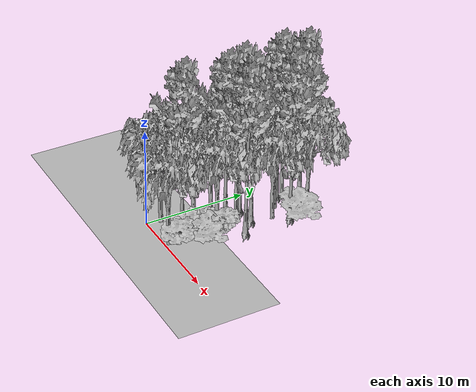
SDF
<sdf version="1.7">
 <world name="default">
  <model name="ground_plane">
   <static>1</static>
   <link name="link">
    <collision name="collision">
     <pose>-50 0 0 0 -0 0</pose>
     <geometry><plane><normal>0 0 1</normal><size>100 100</size></plane></geometry>
     <surface><contact><ode><min_depth>0.01</min_depth><max_vel>0</max_vel></ode></contact></surface>
    </collision>
    <visual name="grass">
     <cast_shadows>0</cast_shadows>
     <geometry>
      <mesh>
       <scale>0.5814285714285714 0.18142857142857144 0.1</scale>
       <uri>file://grass_plane/meshes/grass_plane.dae</uri>
      </mesh>
     </geometry>
    </visual>
   </link>
  </model>
  <model name="Tree 32">
   <static>1</static>
   <pose>3.6359509436147874 1.762278367412243 0 1.57079 -0 0</pose>
   <link name="link">
    <collision name="collision">
     <geometry><mesh><scale>4 2.5 4</scale><uri>model://tree_1/meshes/tree_1.obj</uri></mesh></geometry>
    </collision>
    <visual name="visual">
     <geometry><mesh><scale>4 2.5 4</scale><uri>model://tree_1/meshes/tree_1.obj</uri></mesh></geometry>
    </visual>
   </link>
  </model>
  <model name="Tree 50">
   <static>1</static>
   <pose>2.997747021663905 3.6113305052093736 0 1.57079 -0 0</pose>
   <link name="link">
    <collision name="collision">
     <geometry><mesh><scale>4 2.5 4</scale><uri>model://tree_1/meshes/tree_1.obj</uri></mesh></geometry>
    </collision>
    <visual name="visual">
     <geometry><mesh><scale>4 2.5 4</scale><uri>model://tree_1/meshes/tree_1.obj</uri></mesh></geometry>
    </visual>
   </link>
  </model>
  <model name="Tree 68">
   <static>1</static>
   <pose>5.3373234300077 12.10923159641861 0 1.57079 -0 0</pose>
   <link name="link">
    <collision name="collision">
     <geometry><mesh><scale>3.5 5 3.5</scale><uri>model://tree_9/meshes/tree_9.obj</uri></mesh></geometry>
    </collision>
    <visual name="visual">
     <geometry><mesh><scale>3.5 5 3.5</scale><uri>model://tree_9/meshes/tree_9.obj</uri></mesh></geometry>
    </visual>
   </link>
  </model>
  <model name="Tree 103">
   <static>1</static>
   <pose>5.0837384030493595 14.065991016790193 0 1.57079 -0 0</pose>
   <link name="link">
    <collision name="collision">
     <geometry><mesh><scale>3.5 5 3.5</scale><uri>model://tree_2/meshes/tree_2.obj</uri></mesh></geometry>
    </collision>
    <visual name="visual">
     <geometry><mesh><scale>3.5 5 3.5</scale><uri>model://tree_2/meshes/tree_2.obj</uri></mesh></geometry>
    </visual>
   </link>
  </model>
  <model name="Tree 106">
   <static>1</static>
   <pose>1.678671374052172 12.840617621795072 0 1.57079 -0 0</pose>
   <link name="link">
    <collision name="collision">
     <geometry><mesh><scale>3.5 5 3.5</scale><uri>model://tree_9/meshes/tree_9.obj</uri></mesh></geometry>
    </collision>
    <visual name="visual">
     <geometry><mesh><scale>3.5 5 3.5</scale><uri>model://tree_9/meshes/tree_9.obj</uri></mesh></geometry>
    </visual>
   </link>
  </model>
  <model name="Tree 107">
   <static>1</static>
   <pose>4.29193354149465 3.625306814225997 0 1.57079 -0 0</pose>
   <link name="link">
    <collision name="collision">
     <geometry><mesh><scale>3 2 3</scale><uri>model://tree_3/meshes/tree_3.obj</uri></mesh></geometry>
    </collision>
    <visual name="visual">
     <geometry><mesh><scale>3 2 3</scale><uri>model://tree_3/meshes/tree_3.obj</uri></mesh></geometry>
    </visual>
   </link>
  </model>
  <model name="Tree 124">
   <static>1</static>
   <pose>3.4940394068418854 5.405907248053346 0 1.57079 -0 0</pose>
   <link name="link">
    <collision name="collision">
     <geometry><mesh><scale>3.5 5 3.5</scale><uri>model://tree_2/meshes/tree_2.obj</uri></mesh></geometry>
    </collision>
    <visual name="visual">
     <geometry><mesh><scale>3.5 5 3.5</scale><uri>model://tree_2/meshes/tree_2.obj</uri></mesh></geometry>
    </visual>
   </link>
  </model>
  <model name="Tree 212">
   <static>1</static>
   <pose>4.51891289936804 10.640554352454831 0 1.57079 -0 0</pose>
   <link name="link">
    <collision name="collision">
     <geometry><mesh><scale>3.5 5 3.5</scale><uri>model://tree_2/meshes/tree_2.obj</uri></mesh></geometry>
    </collision>
    <visual name="visual">
     <geometry><mesh><scale>3.5 5 3.5</scale><uri>model://tree_2/meshes/tree_2.obj</uri></mesh></geometry>
    </visual>
   </link>
  </model>
  <model name="Tree 232">
   <static>1</static>
   <pose>1.7301684433556446 3.9252196286578354 0 1.57079 -0 0</pose>
   <link name="link">
    <collision name="collision">
     <geometry><mesh><scale>3.5 5 3.5</scale><uri>model://tree_2/meshes/tree_2.obj</uri></mesh></geometry>
    </collision>
    <visual name="visual">
     <geometry><mesh><scale>3.5 5 3.5</scale><uri>model://tree_2/meshes/tree_2.obj</uri></mesh></geometry>
    </visual>
   </link>
  </model>
  <model name="Tree 236">
   <static>1</static>
   <pose>2.021613179537141 8.617392845584313 0 1.57079 -0 0</pose>
   <link name="link">
    <collision name="collision">
     <geometry><mesh><scale>3.5 5 3.5</scale><uri>model://tree_9/meshes/tree_9.obj</uri></mesh></geometry>
    </collision>
    <visual name="visual">
     <geometry><mesh><scale>3.5 5 3.5</scale><uri>model://tree_9/meshes/tree_9.obj</uri></mesh></geometry>
    </visual>
   </link>
  </model>
  <model name="Tree 275">
   <static>1</static>
   <pose>3.202379959707372 11.657615088617035 0 1.57079 -0 0</pose>
   <link name="link">
    <collision name="collision">
     <geometry><mesh><scale>3.5 5 3.5</scale><uri>model://tree_2/meshes/tree_2.obj</uri></mesh></geometry>
    </collision>
    <visual name="visual">
     <geometry><mesh><scale>3.5 5 3.5</scale><uri>model://tree_2/meshes/tree_2.obj</uri></mesh></geometry>
    </visual>
   </link>
  </model>
  <model name="Tree 295">
   <static>1</static>
   <pose>0.6746716818994827 6.295601057496079 0 1.57079 -0 0</pose>
   <link name="link">
    <collision name="collision">
     <geometry><mesh><scale>3.5 5 3.5</scale><uri>model://tree_2/meshes/tree_2.obj</uri></mesh></geometry>
    </collision>
    <visual name="visual">
     <geometry><mesh><scale>3.5 5 3.5</scale><uri>model://tree_2/meshes/tree_2.obj</uri></mesh></geometry>
    </visual>
   </link>
  </model>
  <model name="Tree 312">
   <static>1</static>
   <pose>2.01400786587584 2.6408006472830614 0 1.57079 -0 0</pose>
   <link name="link">
    <collision name="collision">
     <geometry><mesh><scale>3.5 5 3.5</scale><uri>model://tree_9/meshes/tree_9.obj</uri></mesh></geometry>
    </collision>
    <visual name="visual">
     <geometry><mesh><scale>3.5 5 3.5</scale><uri>model://tree_9/meshes/tree_9.obj</uri></mesh></geometry>
    </visual>
   </link>
  </model>
  <model name="Tree 374">
   <static>1</static>
   <pose>2.469127669580928 6.877933429391064 0 1.57079 -0 0</pose>
   <link name="link">
    <collision name="collision">
     <geometry><mesh><scale>3.5 5 3.5</scale><uri>model://tree_9/meshes/tree_9.obj</uri></mesh></geometry>
    </collision>
    <visual name="visual">
     <geometry><mesh><scale>3.5 5 3.5</scale><uri>model://tree_9/meshes/tree_9.obj</uri></mesh></geometry>
    </visual>
   </link>
  </model>
  <model name="Tree 401">
   <static>1</static>
   <pose>2.26279934137078 13.010061051288336 0 1.57079 -0 0</pose>
   <link name="link">
    <collision name="collision">
     <geometry><mesh><scale>3.5 5 3.5</scale><uri>model://tree_2/meshes/tree_2.obj</uri></mesh></geometry>
    </collision>
    <visual name="visual">
     <geometry><mesh><scale>3.5 5 3.5</scale><uri>model://tree_2/meshes/tree_2.obj</uri></mesh></geometry>
    </visual>
   </link>
  </model>
  <model name="Tree 407">
   <static>1</static>
   <pose>3.992701928798347 8.723492137422422 0 1.57079 -0 0</pose>
   <link name="link">
    <collision name="collision">
     <geometry><mesh><scale>3.5 5 3.5</scale><uri>model://tree_9/meshes/tree_9.obj</uri></mesh></geometry>
    </collision>
    <visual name="visual">
     <geometry><mesh><scale>3.5 5 3.5</scale><uri>model://tree_9/meshes/tree_9.obj</uri></mesh></geometry>
    </visual>
   </link>
  </model>
  <model name="Tree 411">
   <static>1</static>
   <pose>2.3938312838811058 14.920814375002909 0 1.57079 -0 0</pose>
   <link name="link">
    <collision name="collision">
     <geometry><mesh><scale>3.5 5 3.5</scale><uri>model://tree_9/meshes/tree_9.obj</uri></mesh></geometry>
    </collision>
    <visual name="visual">
     <geometry><mesh><scale>3.5 5 3.5</scale><uri>model://tree_9/meshes/tree_9.obj</uri></mesh></geometry>
    </visual>
   </link>
  </model>
  <model name="Tree 424">
   <static>1</static>
   <pose>3.971705454005985 5.283836452071409 0 1.57079 -0 0</pose>
   <link name="link">
    <collision name="collision">
     <geometry><mesh><scale>4 2.5 4</scale><uri>model://tree_1/meshes/tree_1.obj</uri></mesh></geometry>
    </collision>
    <visual name="visual">
     <geometry><mesh><scale>4 2.5 4</scale><uri>model://tree_1/meshes/tree_1.obj</uri></mesh></geometry>
    </visual>
   </link>
  </model>
  <model name="Tree 427">
   <static>1</static>
   <pose>5.240904106476819 12.885047793411925 0 1.57079 -0 0</pose>
   <link name="link">
    <collision name="collision">
     <geometry><mesh><scale>3 2 3</scale><uri>model://tree_3/meshes/tree_3.obj</uri></mesh></geometry>
    </collision>
    <visual name="visual">
     <geometry><mesh><scale>3 2 3</scale><uri>model://tree_3/meshes/tree_3.obj</uri></mesh></geometry>
    </visual>
   </link>
  </model>
  <model name="Tree 456">
   <static>1</static>
   <pose>0.1879475943008373 1.3226771681351366 0 1.57079 -0 0</pose>
   <link name="link">
    <collision name="collision">
     <geometry><mesh><scale>3.5 5 3.5</scale><uri>model://tree_2/meshes/tree_2.obj</uri></mesh></geometry>
    </collision>
    <visual name="visual">
     <geometry><mesh><scale>3.5 5 3.5</scale><uri>model://tree_2/meshes/tree_2.obj</uri></mesh></geometry>
    </visual>
   </link>
  </model>
  <model name="Tree 482">
   <static>1</static>
   <pose>5.415354320414487 7.353677960694569 0 1.57079 -0 0</pose>
   <link name="link">
    <collision name="collision">
     <geometry><mesh><scale>3.5 5 3.5</scale><uri>model://tree_9/meshes/tree_9.obj</uri></mesh></geometry>
    </collision>
    <visual name="visual">
     <geometry><mesh><scale>3.5 5 3.5</scale><uri>model://tree_9/meshes/tree_9.obj</uri></mesh></geometry>
    </visual>
   </link>
  </model>
  <model name="Tree 483">
   <static>1</static>
   <pose>2.569449866973791 7.949114713046139 0 1.57079 -0 0</pose>
   <link name="link">
    <collision name="collision">
     <geometry><mesh><scale>3.5 5 3.5</scale><uri>model://tree_2/meshes/tree_2.obj</uri></mesh></geometry>
    </collision>
    <visual name="visual">
     <geometry><mesh><scale>3.5 5 3.5</scale><uri>model://tree_2/meshes/tree_2.obj</uri></mesh></geometry>
    </visual>
   </link>
  </model>
  <model name="Tree 491">
   <static>1</static>
   <pose>3.590409712585405 0.39355211570174475 0 1.57079 -0 0</pose>
   <link name="link">
    <collision name="collision">
     <geometry><mesh><scale>3.5 5 3.5</scale><uri>model://tree_2/meshes/tree_2.obj</uri></mesh></geometry>
    </collision>
    <visual name="visual">
     <geometry><mesh><scale>3.5 5 3.5</scale><uri>model://tree_2/meshes/tree_2.obj</uri></mesh></geometry>
    </visual>
   </link>
  </model>
 </world>
</sdf>
